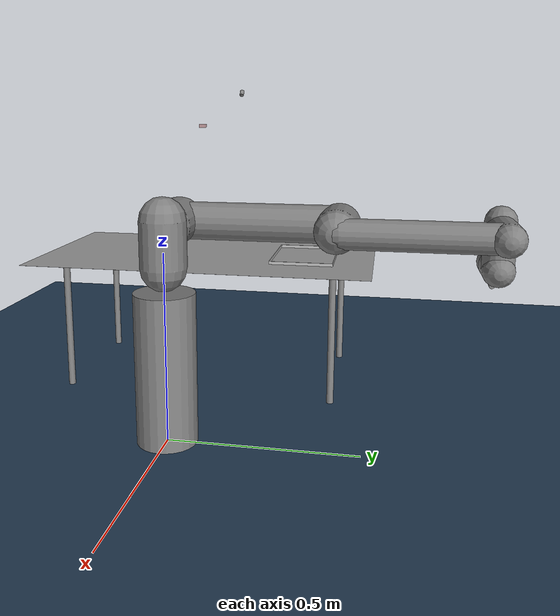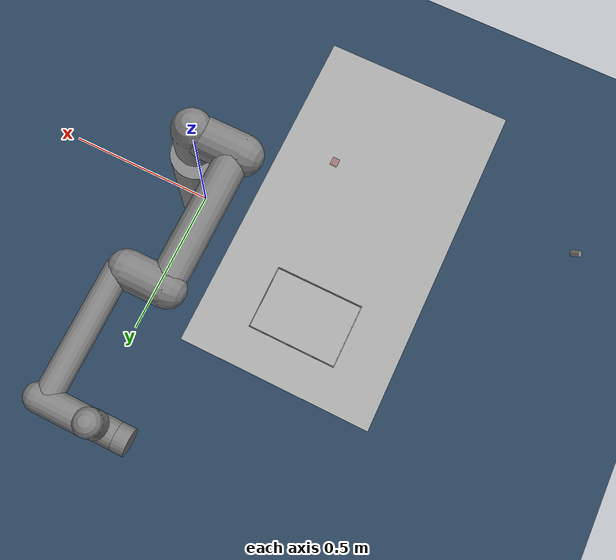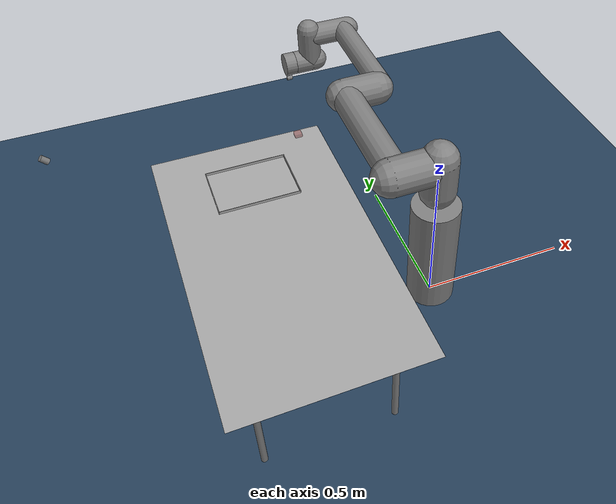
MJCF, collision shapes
<mujoco model="assign">
  <include file="ur5e.xml"/>
  <statistic center="0.3 0 0.4" extent="1.5"/>
  <option integrator="implicitfast"/>
  <visual>
    <headlight diffuse="0.6 0.6 0.6" ambient="0.1 0.1 0.1" specular="0 0 0" active="1"/>
    <rgba haze="0.15 0.25 0.35 1"/>
    <global azimuth="120" elevation="-20" offheight="640" offwidth="640"/>
    <map znear="0.01" zfar="10"/>
  </visual>

  <asset>
    <texture type="skybox" builtin="gradient" rgb1="0.3 0.5 0.7" rgb2="0 0 0" width="512" height="3072"/>
    <texture type="2d" name="groundplane" builtin="checker" mark="edge" rgb1="0.2 0.3 0.4" rgb2="0.1 0.2 0.3"
      markrgb="0.8 0.8 0.8" width="300" height="300"/>
    <texture type="2d" name="desktex" builtin="checker" mark="cross" rgb1="0.645 0.645 0.645" rgb2="0.645 0.645 0.645"
      markrgb="0. 0. 0." width="1024" height="1024"/>
    <material name="groundplane" texture="groundplane" texuniform="true" texrepeat="5 5" reflectance="0.2"/>
    <material name="deskmat" texture="desktex" texuniform="false" texrepeat="2 2" reflectance="0."/>
    <texture name="texplate" type="2d" builtin="checker" rgb1=".9 .9 .9" rgb2=".9 0.9 0.9"
        width="512" height="512" mark="cross" markrgb=".1 .1 .1"/>
    <material name="matplate" reflectance="0." texture="texplate" texrepeat="10 14" texuniform="false"/>
  </asset>

  <worldbody>
    <light pos="0 0 1.5" dir="0 0 -1" directional="true" castshadow="false"/>
    <geom name="floor" pos="0 0 -0.0001" size="5 5 0.0001" type="plane" material="groundplane"/>
    <body name="workspace" pos="-0.5 0 0.4">
      <geom type="box" size="0.285 0.51 0.0001" pos="0 0 -0.0001" rgba="0.645 0.645 0.645 1" friction="1 0.005 0.0001" material="deskmat"/>
      <geom type="cylinder" size="0.01 0.19" pos="-0.2 0.4 -0.2"/>
      <geom type="cylinder" size="0.01 0.19" pos="-0.2 -0.4 -0.2"/>
      <geom type="cylinder" size="0.01 0.19" pos="0.2 0.4 -0.2"/>
      <geom type="cylinder" size="0.01 0.19" pos="0.2 -0.4 -0.2"/>
      <body name="baseplate" pos="0 0.3 0" euler="0 0 1.57">
        <geom type="box" size="0.001 0.1295 0.0045" pos="-0.0935 0 0.0045" rgba="0.7 0.7 0.7 1"/>
        <geom type="box" size="0.001 0.1295 0.0045" pos="0.0935 0 0.0045" rgba="0.7 0.7 0.7 1"/>
        <geom type="box" size="0.0945 0.001 0.0045" pos="0 -0.1295 0.0045" rgba="0.7 0.7 0.7 1"/>
        <geom type="box" size="0.0945 0.001 0.0045" pos="0 0.1295 0.0045" rgba="0.7 0.7 0.7 1"/>
        <geom type="plane" size="0.0925 0.1295 0.0001" pos="0 0 0.0001" rgba="0.9 0.9 0.9 1" material="matplate"/>
      </body>

    </body>
    <body name="side_cam" pos="-1 0 0.9" euler="0 -0.7553984236717224 -1.5707961320877075">
        <geom type="cylinder" size ="0.0075 0.01" pos="0 0 0"/>
        <camera name="side" mode="fixed" pos="0 0 0"  focal="0.009665945 0.009665945"  sensorsize="0.01 0.01" resolution="640 640" />
    </body>
    <body name="target" pos="-0.415 0 .8" euler="3.14 0 -1.57"  mocap="true">
      <geom type="box" size=".009 .009 .0045" contype="0" conaffinity="0" rgba=".6 .3 .3 .5"/>
    </body>
  </worldbody>
</mujoco>

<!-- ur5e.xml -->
<mujoco model="ur5e">
  <compiler angle="radian" meshdir="assets" autolimits="true"/>
  <option integrator="implicitfast"/>
  <default>
    <default class="ur5e">
      <material specular="0.5" shininess="0.25"/>
      <joint axis="0 1 0" range="-6.28319 6.28319" armature="0.1"/>
      <general gaintype="fixed" biastype="affine" ctrlrange="-6.2831 6.2831" gainprm="2000" biasprm="0 -2000 -400"
        forcerange="-150 150"/>
      <default class="size3">
        <default class="size3_limited">
          <joint range="-3.1415 3.1415"/>
          <general ctrlrange="-3.1415 3.1415"/>
        </default>
      </default>
      <default class="size1">
        <general gainprm="500" biasprm="0 -500 -100" forcerange="-28 28"/>
      </default>
      <default class="visual">
        <geom type="mesh" contype="0" conaffinity="0" group="2"/>
      </default>
      <default class="collision">
        <geom type="capsule" group="3"/>
        <default class="eef_collision">
          <geom type="cylinder"/>
        </default>
      </default>
      <site size="0.001" rgba="0.5 0.5 0.5 0.3" group="4"/>
    </default>
  </default>

  <asset>
    <material class="ur5e" name="black" rgba="0.033 0.033 0.033 1"/>
    <material class="ur5e" name="jointgray" rgba="0.278 0.278 0.278 1"/>
    <material class="ur5e" name="linkgray" rgba="0.82 0.82 0.82 1"/>
    <material class="ur5e" name="urblue" rgba="0.49 0.678 0.8 1"/>

    <mesh file="base_0.obj"/>
    <mesh file="base_1.obj"/>
    <mesh file="shoulder_0.obj"/>
    <mesh file="shoulder_1.obj"/>
    <mesh file="shoulder_2.obj"/>
    <mesh file="upperarm_0.obj"/>
    <mesh file="upperarm_1.obj"/>
    <mesh file="upperarm_2.obj"/>
    <mesh file="upperarm_3.obj"/>
    <mesh file="forearm_0.obj"/>
    <mesh file="forearm_1.obj"/>
    <mesh file="forearm_2.obj"/>
    <mesh file="forearm_3.obj"/>
    <mesh file="wrist1_0.obj"/>
    <mesh file="wrist1_1.obj"/>
    <mesh file="wrist1_2.obj"/>
    <mesh file="wrist2_0.obj"/>
    <mesh file="wrist2_1.obj"/>
    <mesh file="wrist2_2.obj"/>
    <mesh file="wrist3.obj"/>
  </asset>

  <worldbody>
    <light name="spotlight" mode="targetbodycom" target="wrist_3_link" pos="0 -1 2" castshadow="false" />
    <body name="base_link" pos="0 0 0.2">
      <geom type="cylinder" size="0.08 0.2" />
    </body>
    <body name="base" pos="0 0 0.4" quat="1 0 0 1" childclass="ur5e">
      <inertial mass="4.0" pos="0 0 0" diaginertia="0.00443333156 0.00443333156 0.0072"/>
      <geom mesh="base_0" material="black" class="visual"/>
      <geom mesh="base_1" material="jointgray" class="visual"/>
      <body name="shoulder_link" pos="0 0 0.163"  gravcomp='1'>
        <inertial mass="3.7" pos="0 0 0" diaginertia="0.0102675 0.0102675 0.00666"/>
        <joint name="shoulder_pan_joint" class="size3" axis="0 0 1"/>
        <geom mesh="shoulder_0" material="urblue" class="visual"/>
        <geom mesh="shoulder_1" material="black" class="visual"/>
        <geom mesh="shoulder_2" material="jointgray" class="visual"/>
        <geom class="collision" size="0.06 0.06" pos="0 0 -0.04"/>
        <body name="upper_arm_link" pos="0 0.138 0" quat="1 0 1 0" gravcomp='1'>
          <inertial mass="8.393" pos="0 0 0.2125" diaginertia="0.133886 0.133886 0.0151074"/>
          <joint name="shoulder_lift_joint" class="size3"/>
          <geom mesh="upperarm_0" material="linkgray" class="visual"/>
          <geom mesh="upperarm_1" material="black" class="visual"/>
          <geom mesh="upperarm_2" material="jointgray" class="visual"/>
          <geom mesh="upperarm_3" material="urblue" class="visual"/>
          <geom class="collision" pos="0 -0.04 0" quat="1 1 0 0" size="0.06 0.06"/>
          <geom class="collision" size="0.05 0.2" pos="0 0 0.2"/>
          <body name="forearm_link" pos="0 -0.131 0.425" gravcomp='1'>
            <inertial mass="2.275" pos="0 0 0.196" diaginertia="0.0311796 0.0311796 0.004095"/>
            <joint name="elbow_joint" class="size3_limited"/>
            <geom mesh="forearm_0" material="urblue" class="visual"/>
            <geom mesh="forearm_1" material="linkgray" class="visual"/>
            <geom mesh="forearm_2" material="black" class="visual"/>
            <geom mesh="forearm_3" material="jointgray" class="visual"/>
            <geom class="collision" pos="0 0.08 0" quat="1 1 0 0" size="0.055 0.06"/>
            <geom class="collision" size="0.038 0.19" pos="0 0 0.2"/>
            <body name="wrist_1_link" pos="0 0 0.392" quat="1 0 1 0" gravcomp='1'>
              <inertial mass="1.219" pos="0 0.127 0" diaginertia="0.0025599 0.0025599 0.0021942"/>
              <joint name="wrist_1_joint" class="size1"/>
              <geom mesh="wrist1_0" material="black" class="visual"/>
              <geom mesh="wrist1_1" material="urblue" class="visual"/>
              <geom mesh="wrist1_2" material="jointgray" class="visual"/>
              <geom class="collision" pos="0 0.05 0" quat="1 1 0 0" size="0.04 0.07"/>
              <body name="wrist_2_link" pos="0 0.127 0" gravcomp='1'>
                <inertial mass="1.219" pos="0 0 0.1" diaginertia="0.0025599 0.0025599 0.0021942"/>
                <joint name="wrist_2_joint" axis="0 0 1" class="size1"/>
                <geom mesh="wrist2_0" material="black" class="visual"/>
                <geom mesh="wrist2_1" material="urblue" class="visual"/>
                <geom mesh="wrist2_2" material="jointgray" class="visual"/>
                <geom class="collision" size="0.04 0.06" pos="0 0 0.04"/>
                <geom class="collision" pos="0 0.02 0.1" quat="1 1 0 0" size="0.04 0.04"/>
                <body name="wrist_3_link" pos="0 0 0.1" gravcomp='1'>
                  <inertial mass="0.1889" pos="0 0.0771683 0" quat="1 0 0 1"
                    diaginertia="0.000132134 9.90863e-05 9.90863e-05"/>
                  <joint name="wrist_3_joint" class="size1"/>
                  <geom material="linkgray" mesh="wrist3" class="visual"/>
                  <geom class="eef_collision" pos="0 0.08 0" quat="1 1 0 0" size="0.04 0.02"/>

                  <body name="tool0_link" pos="0 0.1 0" quat="-1 1 0 0">
                    <site name="attachment_site" pos="0 0 0" quat="1 0 0 0"/>
                  </body>
                  <body name="ur5e_cam" pos="0.01 0.065 0.06" quat="1 1 0 0">
                    <geom size="0.0075 0.01" pos="-0.01025 0 -0.02"  type="cylinder" class="visual"/>
                    <camera name="eyeinhand" mode="fixed" fovy="60" pos="-0.01025 0 -0.02"  axisangle="1 1 1 0"/>
                  </body>
                </body>
              </body>
            </body>
          </body>
        </body>
      </body>
    </body>
  </worldbody>

  <actuator>
    <general class="size3" name="shoulder_pan" joint="shoulder_pan_joint"/>
    <general class="size3" name="shoulder_lift" joint="shoulder_lift_joint"/>
    <general class="size3_limited" name="elbow" joint="elbow_joint"/>
    <general class="size1" name="wrist_1" joint="wrist_1_joint"/>
    <general class="size1" name="wrist_2" joint="wrist_2_joint"/>
    <general class="size1" name="wrist_3" joint="wrist_3_joint"/>
  </actuator>

</mujoco>
